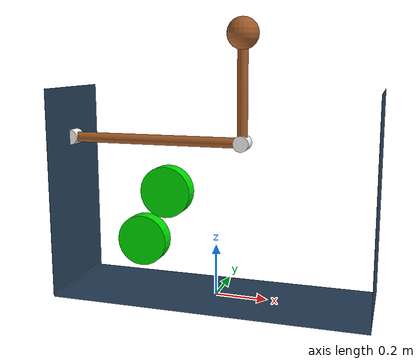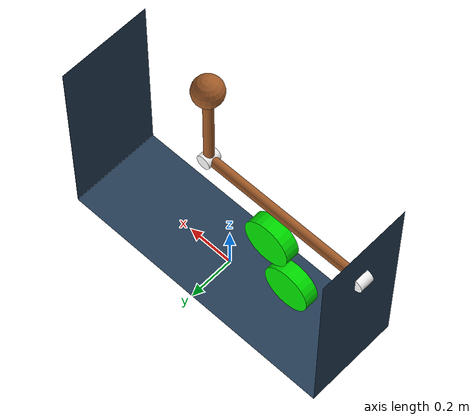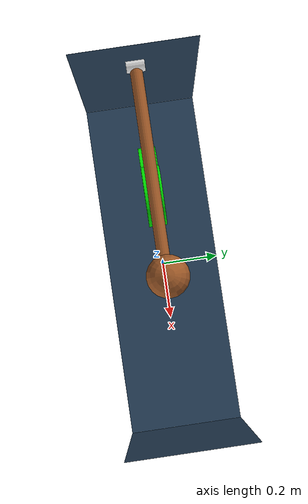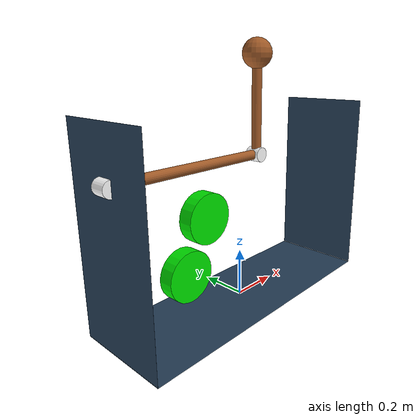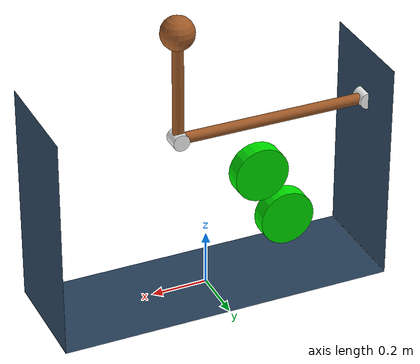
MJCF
<mujoco>
  <visual>
    <global elevation="-10"/>
  </visual>

  <compiler angle="radian"/>

  <!-- Note: actuator groups 1, 2, are disabled by default -->
  <option actuatorgroupdisable="1 2" cone="elliptic"/>

  <asset>
    <texture type="skybox" builtin="gradient" rgb1=".3 .5 .7" rgb2="0 0 0" width="32" height="512"/>
    <texture name="body" type="cube" builtin="flat" mark="cross" width="128" height="128" rgb1="0.8 0.6 0.4" rgb2="0.8 0.6 0.4" markrgb="1 1 1"/>
    <material name="body" texture="body" texuniform="true" rgba="0.8 0.6 .4 1"/>
    <texture name="grid" type="2d" builtin="checker" width="512" height="512" rgb1=".1 .2 .3" rgb2=".2 .3 .4"/>
    <material name="grid" texture="grid" texrepeat="6 2" texuniform="false" reflectance=".2"/>
  </asset>

  <default>
    <general ctrlrange="-1 1"/>
    <geom friction=".4"/>
    <default class="decor">
      <geom type="cylinder" size=".03" fromto="0 -.03 0 0 .03 0" rgba="1 1 1 1"/>
    </default>
    <default class="arm">
      <joint damping="5" axis="0 -1 0"/>
      <geom type="capsule" size=".02" material="body"/>
    </default>
    <default class="object">
      <geom type="cylinder" size="0.1" rgba="0 .9 0 1" fromto="0 -.03 0 0 .03 0"
            solref="-10000 -10" priority="1"/>
      <joint group="3"/>
    </default>

    <!-- Note: motors, position, intvelocity actuators are in groups 0, 1, 2, respectively -->
    <default class="motor">
      <motor group="0" gear="30" ctrlrange="-1 1"/>
    </default>
    <default class="position">
      <position group="1" kp="60"/>
    </default>
    <default class="intvelocity">
      <intvelocity group="2" kp="60" ctrlrange="-.5 .5"/>
    </default>
  </default>

  <worldbody>
    <geom name="floor" type="plane" size=".6 .2 0.01" material="grid"/>
    <geom name="wall0" type="plane" size=".4 .2 0.01" material="grid" pos="-.6 0 .4" zaxis="1 0 0"/>
    <geom name="wall1" type="plane" size=".4 .2 0.01" material="grid" pos=".6 0 .4" zaxis="-1 0 0"/>
    <light pos="-.6 0 3" mode="targetbody" target="hand"/>
    <light pos=".6 0 3" mode="targetbody" target="hand"/>
    <body name="arm" pos="-.6 0 .6" childclass="arm">
      <joint name="arm" range="-1.5 1.5"/>
      <geom class="decor"/>
      <geom name="arm" fromto="0 0 0 .7 0 0"/>
      <body pos=".7 0 0">
        <joint name="hand" range="-4.65 1.5"/>
        <geom class="decor"/>
        <geom fromto="0 0 0 0 0 0.4"/>
        <body name="hand" pos="0 0 0.4">
          <geom name="hand" type="sphere" size=".06" mass="0"/>
        </body>
      </body>
    </body>

    <body childclass="object" pos="-.3 0 .2">
      <joint axis="1 0 0" type="slide"/>
      <joint axis="0 0 1" type="slide"/>
      <joint axis="0 1 0"/>
      <geom/>
    </body>
    <body childclass="object" pos="-.2 0 .4">
      <joint axis="1 0 0" type="slide"/>
      <joint axis="0 0 1" type="slide"/>
      <joint axis="0 1 0"/>
      <geom/>
    </body>
  </worldbody>

  <contact>
    <exclude body1="world" body2="arm"/>
    <pair geom1="arm" geom2="hand"/>
  </contact>

  <actuator>
    <motor class="motor" name="arm torque" joint="arm"/>
    <motor class="motor" name="hand torque" joint="hand"/>
    <position class="position" name="arm position" joint="arm" ctrlrange="-1.5 1.5"/>
    <position class="position" name="hand position" joint="hand" ctrlrange="-1.5 4.65"/>
    <intvelocity class="intvelocity" name="arm velocity" joint="arm" actrange="-1.5 1.5"/>
    <intvelocity class="intvelocity" name="hand velocity" joint="hand" actrange="-1.5 4.65"/>
  </actuator>
</mujoco>
